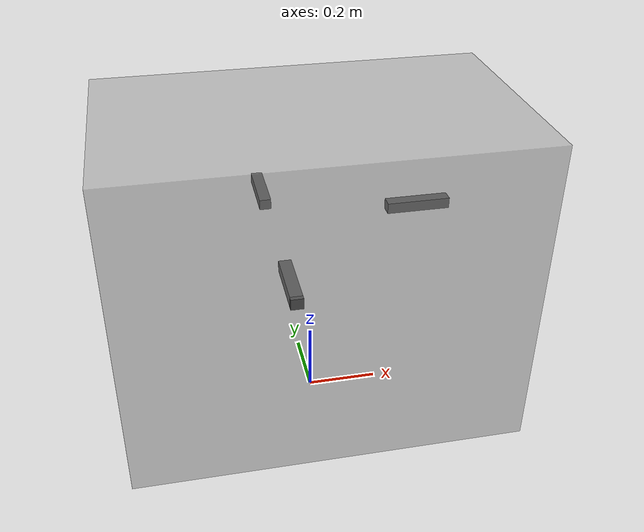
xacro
<?xml version="1.0"?>
<robot xmlns:xacro="http://www.ros.org/wiki/xacro" name="wheelchair">

  <xacro:include filename="$(find wheelchair_slam)/urdf/cameras.urdf.xacro"/>

  <!-- ── Arguments from launch file ─────────────────────────────── -->
  <xacro:arg name="num_cameras" default="3"/>

  <!-- Camera 0 pose (front-facing by default) -->
  <xacro:arg name="cam0_x"     default="0.30"/>
  <xacro:arg name="cam0_y"     default="0.00"/>
  <xacro:arg name="cam0_z"     default="0.60"/>
  <xacro:arg name="cam0_roll"  default="0.0"/>
  <xacro:arg name="cam0_pitch" default="0.0"/>
  <xacro:arg name="cam0_yaw"   default="0.0"/>

  <!-- Camera 1 pose (left-facing by default) -->
  <xacro:arg name="cam1_x"     default="-0.10"/>
  <xacro:arg name="cam1_y"     default="0.25"/>
  <xacro:arg name="cam1_z"     default="0.55"/>
  <xacro:arg name="cam1_roll"  default="0.0"/>
  <xacro:arg name="cam1_pitch" default="0.0"/>
  <xacro:arg name="cam1_yaw"   default="1.5708"/>

  <!-- Camera 2 pose (right-facing by default) -->
  <xacro:arg name="cam2_x"     default="-0.10"/>
  <xacro:arg name="cam2_y"     default="-0.25"/>
  <xacro:arg name="cam2_z"     default="0.55"/>
  <xacro:arg name="cam2_roll"  default="0.0"/>
  <xacro:arg name="cam2_pitch" default="0.0"/>
  <xacro:arg name="cam2_yaw"   default="-1.5708"/>

  <!-- ── Base link ──────────────────────────────────────────────── -->
  <link name="base_link">
    <visual>
      <origin xyz="0 0 0.45" rpy="0 0 0"/>
      <geometry>
        <box size="1.10 0.65 0.90"/>
      </geometry>
      <material name="wheelchair_grey">
        <color rgba="0.6 0.6 0.6 0.5"/>
      </material>
    </visual>
    <collision>
      <origin xyz="0 0 0.45" rpy="0 0 0"/>
      <geometry>
        <box size="1.10 0.65 0.90"/>
      </geometry>
    </collision>
    <inertial>
      <mass value="80.0"/>
      <inertia ixx="5.0" ixy="0" ixz="0"
                         iyy="8.0" iyz="0"
                                   izz="3.0"/>
    </inertial>
  </link>

  <!-- ── Camera mounts ──────────────────────────────────────────── -->
  <!-- Camera 0 is always mounted -->
  <xacro:zed_mini_mount
    name="zed_cam0"
    x="$(arg cam0_x)" y="$(arg cam0_y)" z="$(arg cam0_z)"
    roll="$(arg cam0_roll)" pitch="$(arg cam0_pitch)" yaw="$(arg cam0_yaw)"/>

  <!-- Camera 1 — only included when num_cameras >= 2 -->
  <xacro:if value="${int('$(arg num_cameras)') >= 2}">
    <xacro:zed_mini_mount
      name="zed_cam1"
      x="$(arg cam1_x)" y="$(arg cam1_y)" z="$(arg cam1_z)"
      roll="$(arg cam1_roll)" pitch="$(arg cam1_pitch)" yaw="$(arg cam1_yaw)"/>
  </xacro:if>

  <!-- Camera 2 — only included when num_cameras >= 3 -->
  <xacro:if value="${int('$(arg num_cameras)') >= 3}">
    <xacro:zed_mini_mount
      name="zed_cam2"
      x="$(arg cam2_x)" y="$(arg cam2_y)" z="$(arg cam2_z)"
      roll="$(arg cam2_roll)" pitch="$(arg cam2_pitch)" yaw="$(arg cam2_yaw)"/>
  </xacro:if>

</robot>

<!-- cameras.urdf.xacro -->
<robot xmlns:xacro="http://www.ros.org/wiki/xacro" name="wheelchair_cameras">

  <xacro:macro name="zed_mini_mount" params="name x y z roll pitch yaw">

    <!-- Fixed joint from base_link to the camera body centre -->
    <joint name="${name}_joint" type="fixed">
      <parent link="base_link"/>
      <child  link="${name}_link"/>
      <origin xyz="${x} ${y} ${z}" rpy="${roll} ${pitch} ${yaw}"/>
    </joint>

    <link name="${name}_link">
      <visual>
        <origin xyz="0 0 0" rpy="0 0 0"/>
        <geometry>
          <!-- Approximate ZED Mini body as a box -->
          <box size="0.175 0.033 0.030"/>
        </geometry>
        <material name="zed_grey">
          <color rgba="0.3 0.3 0.3 1.0"/>
        </material>
      </visual>
      <collision>
        <origin xyz="0 0 0" rpy="0 0 0"/>
        <geometry>
          <box size="0.175 0.033 0.030"/>
        </geometry>
      </collision>
      <inertial>
        <mass value="0.063"/>
        <inertia ixx="0.0001" ixy="0" ixz="0"
                              iyy="0.0001" iyz="0"
                                            izz="0.0001"/>
      </inertial>
    </link>

  </xacro:macro>

</robot>
